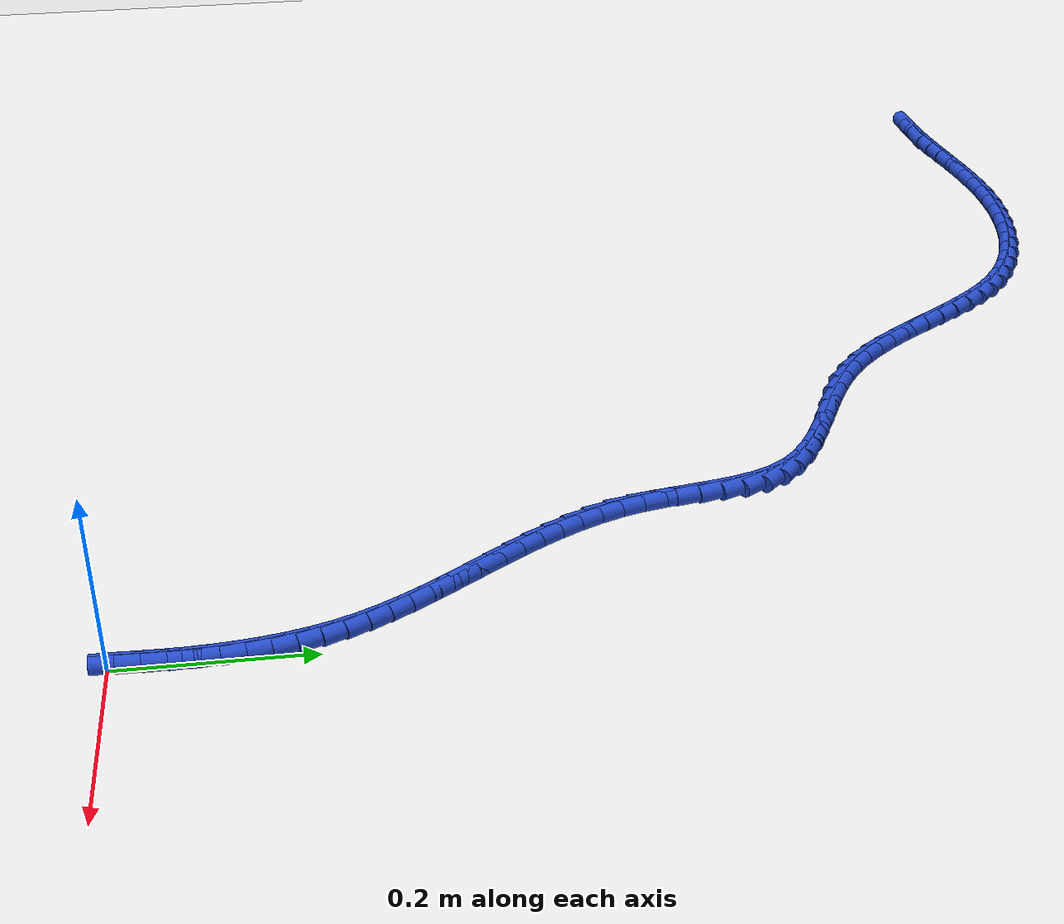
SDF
<sdf version="1.6">
 <world name="default">
  <model name="ground_plane">
   <static>1</static>
   <link name="link">
    <collision name="collision">
     <geometry><plane><normal>0 0 1</normal><size>100 100</size></plane></geometry>
     <surface><friction><ode><mu>100</mu><mu2>50</mu2></ode></friction></surface>
    </collision>
    <visual name="visual">
     <cast_shadows>0</cast_shadows>
     <geometry><plane><normal>0 0 1</normal><size>100 100</size></plane></geometry>
     <material>
      <script><uri>file://media/materials/scripts/gazebo.material</uri><name>Gazebo/WhiteGlow</name></script>
     </material>
    </visual>
   </link>
  </model>
  <model name="line">
   <link name="link_1">
    <pose>0.0007970484209607412 0.024100980883869888 0.01 0 1.57 1.5590506642254127</pose>
    <collision name="collision">
     <geometry><cylinder><radius>0.01</radius><length>0.08</length></cylinder></geometry>
    </collision>
    <visual name="visual">
     <material>
      <script><name>Gazebo/Blue</name><uri>file://media/materials/scripts/gazebo.material</uri></script>
     </material>
     <geometry><cylinder><radius>0.01</radius><length>0.08</length></cylinder></geometry>
    </visual>
   </link>
   <link name="link_2">
    <pose>0.0010815445360322206 0.04832124348585979 0.01 0 1.57 -1.5562364600417415</pose>
    <collision name="collision">
     <geometry><cylinder><radius>0.01</radius><length>0.08</length></cylinder></geometry>
    </collision>
    <visual name="visual">
     <material>
      <script><name>Gazebo/Blue</name><uri>file://media/materials/scripts/gazebo.material</uri></script>
     </material>
     <geometry><cylinder><radius>0.01</radius><length>0.08</length></cylinder></geometry>
    </visual>
   </link>
   <link name="link_3">
    <pose>0.0007285085105565183 0.07256673174743694 0.01 0 1.57 -1.5246875000757079</pose>
    <collision name="collision">
     <geometry><cylinder><radius>0.01</radius><length>0.08</length></cylinder></geometry>
    </collision>
    <visual name="visual">
     <material>
      <script><name>Gazebo/Blue</name><uri>file://media/materials/scripts/gazebo.material</uri></script>
     </material>
     <geometry><cylinder><radius>0.01</radius><length>0.08</length></cylinder></geometry>
    </visual>
   </link>
   <link name="link_4">
    <pose>-0.00038703949012428886 0.0967433896100686 0.01 0 1.57 -1.4875768426590987</pose>
    <collision name="collision">
     <geometry><cylinder><radius>0.01</radius><length>0.08</length></cylinder></geometry>
    </collision>
    <visual name="visual">
     <material>
      <script><name>Gazebo/Blue</name><uri>file://media/materials/scripts/gazebo.material</uri></script>
     </material>
     <geometry><cylinder><radius>0.01</radius><length>0.08</length></cylinder></geometry>
    </visual>
   </link>
   <link name="link_5">
    <pose>-0.0023900793006681265 0.12075716101522205 0.01 0 1.57 -1.4445391100634075</pose>
    <collision name="collision">
     <geometry><cylinder><radius>0.01</radius><length>0.08</length></cylinder></geometry>
    </collision>
    <visual name="visual">
     <material>
      <script><name>Gazebo/Blue</name><uri>file://media/materials/scripts/gazebo.material</uri></script>
     </material>
     <geometry><cylinder><radius>0.01</radius><length>0.08</length></cylinder></geometry>
    </visual>
   </link>
   <link name="link_6">
    <pose>-0.005405590755732916 0.14451398990436462 0.01 0 1.57 -1.3951910916977617</pose>
    <collision name="collision">
     <geometry><cylinder><radius>0.01</radius><length>0.08</length></cylinder></geometry>
    </collision>
    <visual name="visual">
     <material>
      <script><name>Gazebo/Blue</name><uri>file://media/materials/scripts/gazebo.material</uri></script>
     </material>
     <geometry><cylinder><radius>0.01</radius><length>0.08</length></cylinder></geometry>
    </visual>
   </link>
   <link name="link_7">
    <pose>-0.009558553689976582 0.16791982021896348 0.01 0 1.57 -1.3391750716156336</pose>
    <collision name="collision">
     <geometry><cylinder><radius>0.01</radius><length>0.08</length></cylinder></geometry>
    </collision>
    <visual name="visual">
     <material>
      <script><name>Gazebo/Blue</name><uri>file://media/materials/scripts/gazebo.material</uri></script>
     </material>
     <geometry><cylinder><radius>0.01</radius><length>0.08</length></cylinder></geometry>
    </visual>
   </link>
   <link name="link_8">
    <pose>-0.014973947938057052 0.190880595900486 0.01 0 1.57 -1.276220242322087</pose>
    <collision name="collision">
     <geometry><cylinder><radius>0.01</radius><length>0.08</length></cylinder></geometry>
    </collision>
    <visual name="visual">
     <material>
      <script><name>Gazebo/Blue</name><uri>file://media/materials/scripts/gazebo.material</uri></script>
     </material>
     <geometry><cylinder><radius>0.01</radius><length>0.08</length></cylinder></geometry>
    </visual>
   </link>
   <link name="link_9">
    <pose>-0.02177675333463224 0.21330226089039936 0.01 0 1.57 -1.2068035065443747</pose>
    <collision name="collision">
     <geometry><cylinder><radius>0.01</radius><length>0.08</length></cylinder></geometry>
    </collision>
    <visual name="visual">
     <material>
      <script><name>Gazebo/Blue</name><uri>file://media/materials/scripts/gazebo.material</uri></script>
     </material>
     <geometry><cylinder><radius>0.01</radius><length>0.08</length></cylinder></geometry>
    </visual>
   </link>
   <link name="link_10">
    <pose>-0.030080076622343223 0.2350975762234323 0.01 0 1.57 -1.1405671205885406</pose>
    <collision name="collision">
     <geometry><cylinder><radius>0.01</radius><length>0.08</length></cylinder></geometry>
    </collision>
    <visual name="visual">
     <material>
      <script><name>Gazebo/Blue</name><uri>file://media/materials/scripts/gazebo.material</uri></script>
     </material>
     <geometry><cylinder><radius>0.01</radius><length>0.08</length></cylinder></geometry>
    </visual>
   </link>
   <link name="link_11">
    <pose>-0.039805034712374315 0.25628953644251956 0.01 0 1.57 -1.0856745129224168</pose>
    <collision name="collision">
     <geometry><cylinder><radius>0.01</radius><length>0.08</length></cylinder></geometry>
    </collision>
    <visual name="visual">
     <material>
      <script><name>Gazebo/Blue</name><uri>file://media/materials/scripts/gazebo.material</uri></script>
     </material>
     <geometry><cylinder><radius>0.01</radius><length>0.08</length></cylinder></geometry>
    </visual>
   </link>
   <link name="link_12">
    <pose>-0.050717258536227966 0.2769904104281333 0.01 0 1.57 -1.0425523027838146</pose>
    <collision name="collision">
     <geometry><cylinder><radius>0.01</radius><length>0.08</length></cylinder></geometry>
    </collision>
    <visual name="visual">
     <material>
      <script><name>Gazebo/Blue</name><uri>file://media/materials/scripts/gazebo.material</uri></script>
     </material>
     <geometry><cylinder><radius>0.01</radius><length>0.08</length></cylinder></geometry>
    </visual>
   </link>
   <link name="link_13">
    <pose>-0.06257790863728484 0.29731503379337926 0.01 0 1.57 -1.0110962908676804</pose>
    <collision name="collision">
     <geometry><cylinder><radius>0.01</radius><length>0.08</length></cylinder></geometry>
    </collision>
    <visual name="visual">
     <material>
      <script><name>Gazebo/Blue</name><uri>file://media/materials/scripts/gazebo.material</uri></script>
     </material>
     <geometry><cylinder><radius>0.01</radius><length>0.08</length></cylinder></geometry>
    </visual>
   </link>
   <link name="link_14">
    <pose>-0.07514814555892554 0.3173782421513631 0.01 0 1.57 -0.9910690757105136</pose>
    <collision name="collision">
     <geometry><cylinder><radius>0.01</radius><length>0.08</length></cylinder></geometry>
    </collision>
    <visual name="visual">
     <material>
      <script><name>Gazebo/Blue</name><uri>file://media/materials/scripts/gazebo.material</uri></script>
     </material>
     <geometry><cylinder><radius>0.01</radius><length>0.08</length></cylinder></geometry>
    </visual>
   </link>
   <link name="link_15">
    <pose>-0.08818912984453078 0.33729487111519063 0.01 0 1.57 -0.9822263687409355</pose>
    <collision name="collision">
     <geometry><cylinder><radius>0.01</radius><length>0.08</length></cylinder></geometry>
    </collision>
    <visual name="visual">
     <material>
      <script><name>Gazebo/Blue</name><uri>file://media/materials/scripts/gazebo.material</uri></script>
     </material>
     <geometry><cylinder><radius>0.01</radius><length>0.08</length></cylinder></geometry>
    </visual>
   </link>
   <link name="link_16">
    <pose>-0.1014620220374812 0.3571797562979676 0.01 0 1.57 -0.9843911157351981</pose>
    <collision name="collision">
     <geometry><cylinder><radius>0.01</radius><length>0.08</length></cylinder></geometry>
    </collision>
    <visual name="visual">
     <material>
      <script><name>Gazebo/Blue</name><uri>file://media/materials/scripts/gazebo.material</uri></script>
     </material>
     <geometry><cylinder><radius>0.01</radius><length>0.08</length></cylinder></geometry>
    </visual>
   </link>
   <link name="link_17">
    <pose>-0.11472798268115736 0.3771477333127995 0.01 0 1.57 -0.997482613853166</pose>
    <collision name="collision">
     <geometry><cylinder><radius>0.01</radius><length>0.08</length></cylinder></geometry>
    </collision>
    <visual name="visual">
     <material>
      <script><name>Gazebo/Blue</name><uri>file://media/materials/scripts/gazebo.material</uri></script>
     </material>
     <geometry><cylinder><radius>0.01</radius><length>0.08</length></cylinder></geometry>
    </visual>
   </link>
   <link name="link_18">
    <pose>-0.12774817231893995 0.3973136377727922 0.01 0 1.57 -1.0215063973636789</pose>
    <collision name="collision">
     <geometry><cylinder><radius>0.01</radius><length>0.08</length></cylinder></geometry>
    </collision>
    <visual name="visual">
     <material>
      <script><name>Gazebo/Blue</name><uri>file://media/materials/scripts/gazebo.material</uri></script>
     </material>
     <geometry><cylinder><radius>0.01</radius><length>0.08</length></cylinder></geometry>
    </visual>
   </link>
   <link name="link_19">
    <pose>-0.1402837514942097 0.41779230529105144 0.01 0 1.57 -1.056506563675862</pose>
    <collision name="collision">
     <geometry><cylinder><radius>0.01</radius><length>0.08</length></cylinder></geometry>
    </collision>
    <visual name="visual">
     <material>
      <script><name>Gazebo/Blue</name><uri>file://media/materials/scripts/gazebo.material</uri></script>
     </material>
     <geometry><cylinder><radius>0.01</radius><length>0.08</length></cylinder></geometry>
    </visual>
   </link>
   <link name="link_20">
    <pose>-0.15209588075034713 0.43869857148068286 0.01 0 1.57 -1.102479129949488</pose>
    <collision name="collision">
     <geometry><cylinder><radius>0.01</radius><length>0.08</length></cylinder></geometry>
    </collision>
    <visual name="visual">
     <material>
      <script><name>Gazebo/Blue</name><uri>file://media/materials/scripts/gazebo.material</uri></script>
     </material>
     <geometry><cylinder><radius>0.01</radius><length>0.08</length></cylinder></geometry>
    </visual>
   </link>
   <link name="link_21">
    <pose>-0.16294572063073295 0.4601472719547923 0.01 0 1.57 -1.1592462468740627</pose>
    <collision name="collision">
     <geometry><cylinder><radius>0.01</radius><length>0.08</length></cylinder></geometry>
    </collision>
    <visual name="visual">
     <material>
      <script><name>Gazebo/Blue</name><uri>file://media/materials/scripts/gazebo.material</uri></script>
     </material>
     <geometry><cylinder><radius>0.01</radius><length>0.08</length></cylinder></geometry>
    </visual>
   </link>
   <link name="link_22">
    <pose>-0.1725944316787478 0.48225324232648525 0.01 0 1.57 -1.2263000235672428</pose>
    <collision name="collision">
     <geometry><cylinder><radius>0.01</radius><length>0.08</length></cylinder></geometry>
    </collision>
    <visual name="visual">
     <material>
      <script><name>Gazebo/Blue</name><uri>file://media/materials/scripts/gazebo.material</uri></script>
     </material>
     <geometry><cylinder><radius>0.01</radius><length>0.08</length></cylinder></geometry>
    </visual>
   </link>
   <link name="link_23">
    <pose>-0.1808031744377723 0.5051313182088677 0.01 0 1.57 -1.3025626650573683</pose>
    <collision name="collision">
     <geometry><cylinder><radius>0.01</radius><length>0.08</length></cylinder></geometry>
    </collision>
    <visual name="visual">
     <material>
      <script><name>Gazebo/Blue</name><uri>file://media/materials/scripts/gazebo.material</uri></script>
     </material>
     <geometry><cylinder><radius>0.01</radius><length>0.08</length></cylinder></geometry>
    </visual>
   </link>
   <link name="link_24">
    <pose>-0.18733486048429673 0.5288952237328173 0.01 0 1.57 -1.3732433527757366</pose>
    <collision name="collision">
     <geometry><cylinder><radius>0.01</radius><length>0.08</length></cylinder></geometry>
    </collision>
    <visual name="visual">
     <material>
      <script><name>Gazebo/Blue</name><uri>file://media/materials/scripts/gazebo.material</uri></script>
     </material>
     <geometry><cylinder><radius>0.01</radius><length>0.08</length></cylinder></geometry>
    </visual>
   </link>
   <link name="link_25">
    <pose>-0.19225336715575275 0.5534676426127636 0.01 0 1.57 -1.4111423235205427</pose>
    <collision name="collision">
     <geometry><cylinder><radius>0.01</radius><length>0.08</length></cylinder></geometry>
    </collision>
    <visual name="visual">
     <material>
      <script><name>Gazebo/Blue</name><uri>file://media/materials/scripts/gazebo.material</uri></script>
     </material>
     <geometry><cylinder><radius>0.01</radius><length>0.08</length></cylinder></geometry>
    </visual>
   </link>
   <link name="link_26">
    <pose>-0.19626246417296553 0.5783650817707223 0.01 0 1.57 -1.414692538580771</pose>
    <collision name="collision">
     <geometry><cylinder><radius>0.01</radius><length>0.08</length></cylinder></geometry>
    </collision>
    <visual name="visual">
     <material>
      <script><name>Gazebo/Blue</name><uri>file://media/materials/scripts/gazebo.material</uri></script>
     </material>
     <geometry><cylinder><radius>0.01</radius><length>0.08</length></cylinder></geometry>
    </visual>
   </link>
   <link name="link_27">
    <pose>-0.20014780780355898 0.6030520699902222 0.01 0 1.57 -1.383097111100767</pose>
    <collision name="collision">
     <geometry><cylinder><radius>0.01</radius><length>0.08</length></cylinder></geometry>
    </collision>
    <visual name="visual">
     <material>
      <script><name>Gazebo/Blue</name><uri>file://media/materials/scripts/gazebo.material</uri></script>
     </material>
     <geometry><cylinder><radius>0.01</radius><length>0.08</length></cylinder></geometry>
    </visual>
   </link>
   <link name="link_28">
    <pose>-0.20469505431515722 0.6269931360547925 0.01 0 1.57 -1.3121633099585046</pose>
    <collision name="collision">
     <geometry><cylinder><radius>0.01</radius><length>0.08</length></cylinder></geometry>
    </collision>
    <visual name="visual">
     <material>
      <script><name>Gazebo/Blue</name><uri>file://media/materials/scripts/gazebo.material</uri></script>
     </material>
     <geometry><cylinder><radius>0.01</radius><length>0.08</length></cylinder></geometry>
    </visual>
   </link>
   <link name="link_29">
    <pose>-0.210689859975384 0.6496528087479614 0.01 0 1.57 -1.1948105988775166</pose>
    <collision name="collision">
     <geometry><cylinder><radius>0.01</radius><length>0.08</length></cylinder></geometry>
    </collision>
    <visual name="visual">
     <material>
      <script><name>Gazebo/Blue</name><uri>file://media/materials/scripts/gazebo.material</uri></script>
     </material>
     <geometry><cylinder><radius>0.01</radius><length>0.08</length></cylinder></geometry>
    </visual>
   </link>
   <link name="link_30">
    <pose>-0.21891788105186344 0.6704956168532586 0.01 0 1.57 -1.0243563953136636</pose>
    <collision name="collision">
     <geometry><cylinder><radius>0.01</radius><length>0.08</length></cylinder></geometry>
    </collision>
    <visual name="visual">
     <material>
      <script><name>Gazebo/Blue</name><uri>file://media/materials/scripts/gazebo.material</uri></script>
     </material>
     <geometry><cylinder><radius>0.01</radius><length>0.08</length></cylinder></geometry>
    </visual>
   </link>
   <link name="link_31">
    <pose>-0.23016432078421822 0.6889864337784675 0.01 0 1.57 -0.823109774391957</pose>
    <collision name="collision">
     <geometry><cylinder><radius>0.01</radius><length>0.08</length></cylinder></geometry>
    </collision>
    <visual name="visual">
     <material>
      <script><name>Gazebo/Blue</name><uri>file://media/materials/scripts/gazebo.material</uri></script>
     </material>
     <geometry><cylinder><radius>0.01</radius><length>0.08</length></cylinder></geometry>
    </visual>
   </link>
   <link name="link_32">
    <pose>-0.24487370348641282 0.7048492917926089 0.01 0 1.57 -0.658723296787749</pose>
    <collision name="collision">
     <geometry><cylinder><radius>0.01</radius><length>0.08</length></cylinder></geometry>
    </collision>
    <visual name="visual">
     <material>
      <script><name>Gazebo/Blue</name><uri>file://media/materials/scripts/gazebo.material</uri></script>
     </material>
     <geometry><cylinder><radius>0.01</radius><length>0.08</length></cylinder></geometry>
    </visual>
   </link>
   <link name="link_33">
    <pose>-0.26254471375626814 0.7185277356595703 0.01 0 1.57 -0.5433720480111619</pose>
    <collision name="collision">
     <geometry><cylinder><radius>0.01</radius><length>0.08</length></cylinder></geometry>
    </collision>
    <visual name="visual">
     <material>
      <script><name>Gazebo/Blue</name><uri>file://media/materials/scripts/gazebo.material</uri></script>
     </material>
     <geometry><cylinder><radius>0.01</radius><length>0.08</length></cylinder></geometry>
    </visual>
   </link>
   <link name="link_34">
    <pose>-0.2825132212821765 0.7305891655488476 0.01 0 1.57 -0.4714267252770129</pose>
    <collision name="collision">
     <geometry><cylinder><radius>0.01</radius><length>0.08</length></cylinder></geometry>
    </collision>
    <visual name="visual">
     <material>
      <script><name>Gazebo/Blue</name><uri>file://media/materials/scripts/gazebo.material</uri></script>
     </material>
     <geometry><cylinder><radius>0.01</radius><length>0.08</length></cylinder></geometry>
    </visual>
   </link>
   <link name="link_35">
    <pose>-0.3041150957525304 0.7416009816299373 0.01 0 1.57 -0.43649680693843845</pose>
    <collision name="collision">
     <geometry><cylinder><radius>0.01</radius><length>0.08</length></cylinder></geometry>
    </collision>
    <visual name="visual">
     <material>
      <script><name>Gazebo/Blue</name><uri>file://media/materials/scripts/gazebo.material</uri></script>
     </material>
     <geometry><cylinder><radius>0.01</radius><length>0.08</length></cylinder></geometry>
    </visual>
   </link>
   <link name="link_36">
    <pose>-0.3266862068557221 0.7521305840723356 0.01 0 1.57 -0.4344432025812066</pose>
    <collision name="collision">
     <geometry><cylinder><radius>0.01</radius><length>0.08</length></cylinder></geometry>
    </collision>
    <visual name="visual">
     <material>
      <script><name>Gazebo/Blue</name><uri>file://media/materials/scripts/gazebo.material</uri></script>
     </material>
     <geometry><cylinder><radius>0.01</radius><length>0.08</length></cylinder></geometry>
    </visual>
   </link>
   <link name="link_37">
    <pose>-0.3495624242801442 0.7627453730455389 0.01 0 1.57 -0.46395946269068633</pose>
    <collision name="collision">
     <geometry><cylinder><radius>0.01</radius><length>0.08</length></cylinder></geometry>
    </collision>
    <visual name="visual">
     <material>
      <script><name>Gazebo/Blue</name><uri>file://media/materials/scripts/gazebo.material</uri></script>
     </material>
     <geometry><cylinder><radius>0.01</radius><length>0.08</length></cylinder></geometry>
    </visual>
   </link>
   <link name="link_38">
    <pose>-0.372079617714189 0.7740127487190436 0.01 0 1.57 -0.5263082969305263</pose>
    <collision name="collision">
     <geometry><cylinder><radius>0.01</radius><length>0.08</length></cylinder></geometry>
    </collision>
    <visual name="visual">
     <material>
      <script><name>Gazebo/Blue</name><uri>file://media/materials/scripts/gazebo.material</uri></script>
     </material>
     <geometry><cylinder><radius>0.01</radius><length>0.08</length></cylinder></geometry>
    </visual>
   </link>
   <link name="link_39">
    <pose>-0.39357365684624906 0.7865001112623456 0.01 0 1.57 -0.6234887158550748</pose>
    <collision name="collision">
     <geometry><cylinder><radius>0.01</radius><length>0.08</length></cylinder></geometry>
    </collision>
    <visual name="visual">
     <material>
      <script><name>Gazebo/Blue</name><uri>file://media/materials/scripts/gazebo.material</uri></script>
     </material>
     <geometry><cylinder><radius>0.01</radius><length>0.08</length></cylinder></geometry>
    </visual>
   </link>
   <link name="link_40">
    <pose>-0.41339848496765896 0.8007579090677729 0.01 0 1.57 -0.732207605851496</pose>
    <collision name="collision">
     <geometry><cylinder><radius>0.01</radius><length>0.08</length></cylinder></geometry>
    </collision>
    <visual name="visual">
     <material>
      <script><name>Gazebo/Blue</name><uri>file://media/materials/scripts/gazebo.material</uri></script>
     </material>
     <geometry><cylinder><radius>0.01</radius><length>0.08</length></cylinder></geometry>
    </visual>
   </link>
   <link name="link_41">
    <pose>-0.4313649842175776 0.8169080138043303 0.01 0 1.57 -0.8238655063089911</pose>
    <collision name="collision">
     <geometry><cylinder><radius>0.01</radius><length>0.08</length></cylinder></geometry>
    </collision>
    <visual name="visual">
     <material>
      <script><name>Gazebo/Blue</name><uri>file://media/materials/scripts/gazebo.material</uri></script>
     </material>
     <geometry><cylinder><radius>0.01</radius><length>0.08</length></cylinder></geometry>
    </visual>
   </link>
   <link name="link_42">
    <pose>-0.4477651372034923 0.8346210585052847 0.01 0 1.57 -0.8957785052821226</pose>
    <collision name="collision">
     <geometry><cylinder><radius>0.01</radius><length>0.08</length></cylinder></geometry>
    </collision>
    <visual name="visual">
     <material>
      <script><name>Gazebo/Blue</name><uri>file://media/materials/scripts/gazebo.material</uri></script>
     </material>
     <geometry><cylinder><radius>0.01</radius><length>0.08</length></cylinder></geometry>
    </visual>
   </link>
   <link name="link_43">
    <pose>-0.4629138364821737 0.8535461882716753 0.01 0 1.57 -0.9479072521702695</pose>
    <collision name="collision">
     <geometry><cylinder><radius>0.01</radius><length>0.08</length></cylinder></geometry>
    </collision>
    <visual name="visual">
     <material>
      <script><name>Gazebo/Blue</name><uri>file://media/materials/scripts/gazebo.material</uri></script>
     </material>
     <geometry><cylinder><radius>0.01</radius><length>0.08</length></cylinder></geometry>
    </visual>
   </link>
   <link name="link_44">
    <pose>-0.47712597461039236 0.8733325482045406 0.01 0 1.57 -0.9807733343745144</pose>
    <collision name="collision">
     <geometry><cylinder><radius>0.01</radius><length>0.08</length></cylinder></geometry>
    </collision>
    <visual name="visual">
     <material>
      <script><name>Gazebo/Blue</name><uri>file://media/materials/scripts/gazebo.material</uri></script>
     </material>
     <geometry><cylinder><radius>0.01</radius><length>0.08</length></cylinder></geometry>
    </visual>
   </link>
   <link name="link_45">
    <pose>-0.4907164441449183 0.8936292834049192 0.01 0 1.57 -0.9948636064075415</pose>
    <collision name="collision">
     <geometry><cylinder><radius>0.01</radius><length>0.08</length></cylinder></geometry>
    </collision>
    <visual name="visual">
     <material>
      <script><name>Gazebo/Blue</name><uri>file://media/materials/scripts/gazebo.material</uri></script>
     </material>
     <geometry><cylinder><radius>0.01</radius><length>0.08</length></cylinder></geometry>
    </visual>
   </link>
   <link name="link_46">
    <pose>-0.504000137642522 0.9140855389738499 0.01 0 1.57 -0.9902829873642007</pose>
    <collision name="collision">
     <geometry><cylinder><radius>0.01</radius><length>0.08</length></cylinder></geometry>
    </collision>
    <visual name="visual">
     <material>
      <script><name>Gazebo/Blue</name><uri>file://media/materials/scripts/gazebo.material</uri></script>
     </material>
     <geometry><cylinder><radius>0.01</radius><length>0.08</length></cylinder></geometry>
    </visual>
   </link>
   <link name="link_47">
    <pose>-0.517291947659974 0.9343504600123713 0.01 0 1.57 -0.9666026711791768</pose>
    <collision name="collision">
     <geometry><cylinder><radius>0.01</radius><length>0.08</length></cylinder></geometry>
    </collision>
    <visual name="visual">
     <material>
      <script><name>Gazebo/Blue</name><uri>file://media/materials/scripts/gazebo.material</uri></script>
     </material>
     <geometry><cylinder><radius>0.01</radius><length>0.08</length></cylinder></geometry>
    </visual>
   </link>
   <link name="link_48">
    <pose>-0.5309067667540446 0.9540731916215222 0.01 0 1.57 -0.9228759148160085</pose>
    <collision name="collision">
     <geometry><cylinder><radius>0.01</radius><length>0.08</length></cylinder></geometry>
    </collision>
    <visual name="visual">
     <material>
      <script><name>Gazebo/Blue</name><uri>file://media/materials/scripts/gazebo.material</uri></script>
     </material>
     <geometry><cylinder><radius>0.01</radius><length>0.08</length></cylinder></geometry>
    </visual>
   </link>
   <link name="link_49">
    <pose>-0.5451594874815038 0.9729028789023408 0.01 0 1.57 -0.8578596229150195</pose>
    <collision name="collision">
     <geometry><cylinder><radius>0.01</radius><length>0.08</length></cylinder></geometry>
    </collision>
    <visual name="visual">
     <material>
      <script><name>Gazebo/Blue</name><uri>file://media/materials/scripts/gazebo.material</uri></script>
     </material>
     <geometry><cylinder><radius>0.01</radius><length>0.08</length></cylinder></geometry>
    </visual>
   </link>
   <link name="link_50">
    <pose>-0.5603650023991221 0.9904886669558661 0.01 0 1.57 -0.7705469808768325</pose>
    <collision name="collision">
     <geometry><cylinder><radius>0.01</radius><length>0.08</length></cylinder></geometry>
    </collision>
    <visual name="visual">
     <material>
      <script><name>Gazebo/Blue</name><uri>file://media/materials/scripts/gazebo.material</uri></script>
     </material>
     <geometry><cylinder><radius>0.01</radius><length>0.08</length></cylinder></geometry>
    </visual>
   </link>
   <link name="link_51">
    <pose>-0.57683820406367 1.0064797008831365 0.01 0 1.57 -0.6611400918502731</pose>
    <collision name="collision">
     <geometry><cylinder><radius>0.01</radius><length>0.08</length></cylinder></geometry>
    </collision>
    <visual name="visual">
     <material>
      <script><name>Gazebo/Blue</name><uri>file://media/materials/scripts/gazebo.material</uri></script>
     </material>
     <geometry><cylinder><radius>0.01</radius><length>0.08</length></cylinder></geometry>
    </visual>
   </link>
   <link name="link_52">
    <pose>-0.5948934781546033 1.0205255006504517 0.01 0 1.57 -0.5398579570727587</pose>
    <collision name="collision">
     <geometry><cylinder><radius>0.01</radius><length>0.08</length></cylinder></geometry>
    </collision>
    <visual name="visual">
     <material>
      <script><name>Gazebo/Blue</name><uri>file://media/materials/scripts/gazebo.material</uri></script>
     </material>
     <geometry><cylinder><radius>0.01</radius><length>0.08</length></cylinder></geometry>
    </visual>
   </link>
   <link name="link_53">
    <pose>-0.6146915484365888 1.0323892281490707 0.01 0 1.57 -0.4274421773303493</pose>
    <collision name="collision">
     <geometry><cylinder><radius>0.01</radius><length>0.08</length></cylinder></geometry>
    </collision>
    <visual name="visual">
     <material>
      <script><name>Gazebo/Blue</name><uri>file://media/materials/scripts/gazebo.material</uri></script>
     </material>
     <geometry><cylinder><radius>0.01</radius><length>0.08</length></cylinder></geometry>
    </visual>
   </link>
   <link name="link_54">
    <pose>-0.6360242259432919 1.0421068776955869 0.01 0 1.57 -0.32623134168544327</pose>
    <collision name="collision">
     <geometry><cylinder><radius>0.01</radius><length>0.08</length></cylinder></geometry>
    </collision>
    <visual name="visual">
     <material>
      <script><name>Gazebo/Blue</name><uri>file://media/materials/scripts/gazebo.material</uri></script>
     </material>
     <geometry><cylinder><radius>0.01</radius><length>0.08</length></cylinder></geometry>
    </visual>
   </link>
   <link name="link_55">
    <pose>-0.6586290972975799 1.049754545712776 0.01 0 1.57 -0.23499501403604114</pose>
    <collision name="collision">
     <geometry><cylinder><radius>0.01</radius><length>0.08</length></cylinder></geometry>
    </collision>
    <visual name="visual">
     <material>
      <script><name>Gazebo/Blue</name><uri>file://media/materials/scripts/gazebo.material</uri></script>
     </material>
     <geometry><cylinder><radius>0.01</radius><length>0.08</length></cylinder></geometry>
    </visual>
   </link>
   <link name="link_56">
    <pose>-0.682243749122319 1.0554083286234128 0.01 0 1.57 -0.15216776344641975</pose>
    <collision name="collision">
     <geometry><cylinder><radius>0.01</radius><length>0.08</length></cylinder></geometry>
    </collision>
    <visual name="visual">
     <material>
      <script><name>Gazebo/Blue</name><uri>file://media/materials/scripts/gazebo.material</uri></script>
     </material>
     <geometry><cylinder><radius>0.01</radius><length>0.08</length></cylinder></geometry>
    </visual>
   </link>
   <link name="link_57">
    <pose>-0.7066057680403758 1.0591443228502733 0.01 0 1.57 -0.07609154753678987</pose>
    <collision name="collision">
     <geometry><cylinder><radius>0.01</radius><length>0.08</length></cylinder></geometry>
    </collision>
    <visual name="visual">
     <material>
      <script><name>Gazebo/Blue</name><uri>file://media/materials/scripts/gazebo.material</uri></script>
     </material>
     <geometry><cylinder><radius>0.01</radius><length>0.08</length></cylinder></geometry>
    </visual>
   </link>
   <link name="link_58">
    <pose>-0.7314527406746172 1.061038624816132 0.01 0 1.57 -0.005133924898762644</pose>
    <collision name="collision">
     <geometry><cylinder><radius>0.01</radius><length>0.08</length></cylinder></geometry>
    </collision>
    <visual name="visual">
     <material>
      <script><name>Gazebo/Blue</name><uri>file://media/materials/scripts/gazebo.material</uri></script>
     </material>
     <geometry><cylinder><radius>0.01</radius><length>0.08</length></cylinder></geometry>
    </visual>
   </link>
   <link name="link_59">
    <pose>-0.7565222536479099 1.0611673309437646 0.01 0 1.57 0.062277162315601965</pose>
    <collision name="collision">
     <geometry><cylinder><radius>0.01</radius><length>0.08</length></cylinder></geometry>
    </collision>
    <visual name="visual">
     <material>
      <script><name>Gazebo/Blue</name><uri>file://media/materials/scripts/gazebo.material</uri></script>
     </material>
     <geometry><cylinder><radius>0.01</radius><length>0.08</length></cylinder></geometry>
    </visual>
   </link>
   <link name="link_60">
    <pose>-0.7815518935831205 1.0596065376559465 0.01 0 1.57 0.12764127700708167</pose>
    <collision name="collision">
     <geometry><cylinder><radius>0.01</radius><length>0.08</length></cylinder></geometry>
    </collision>
    <visual name="visual">
     <material>
      <script><name>Gazebo/Blue</name><uri>file://media/materials/scripts/gazebo.material</uri></script>
     </material>
     <geometry><cylinder><radius>0.01</radius><length>0.08</length></cylinder></geometry>
    </visual>
   </link>
   <link name="link_61">
    <pose>-0.806279998149785 1.0564329570912971 0.01 0 1.57 0.18837953735558405</pose>
    <collision name="collision">
     <geometry><cylinder><radius>0.01</radius><length>0.08</length></cylinder></geometry>
    </collision>
    <visual name="visual">
     <material>
      <script><name>Gazebo/Blue</name><uri>file://media/materials/scripts/gazebo.material</uri></script>
     </material>
     <geometry><cylinder><radius>0.01</radius><length>0.08</length></cylinder></geometry>
    </visual>
   </link>
   <link name="link_62">
    <pose>-0.830546700025307 1.051806753991003 0.01 0 1.57 0.2366429016731915</pose>
    <collision name="collision">
     <geometry><cylinder><radius>0.01</radius><length>0.08</length></cylinder></geometry>
    </collision>
    <visual name="visual">
     <material>
      <script><name>Gazebo/Blue</name><uri>file://media/materials/scripts/gazebo.material</uri></script>
     </material>
     <geometry><cylinder><radius>0.01</radius><length>0.08</length></cylinder></geometry>
    </visual>
   </link>
   <link name="link_63">
    <pose>-0.8543959957744661 1.046055222824195 0.01 0 1.57 0.271018231518018</pose>
    <collision name="collision">
     <geometry><cylinder><radius>0.01</radius><length>0.08</length></cylinder></geometry>
    </collision>
    <visual name="visual">
     <material>
      <script><name>Gazebo/Blue</name><uri>file://media/materials/scripts/gazebo.material</uri></script>
     </material>
     <geometry><cylinder><radius>0.01</radius><length>0.08</length></cylinder></geometry>
    </visual>
   </link>
   <link name="link_64">
    <pose>-0.8778961882794851 1.0395255846309814 0.01 0 1.57 0.29124762909165003</pose>
    <collision name="collision">
     <geometry><cylinder><radius>0.01</radius><length>0.08</length></cylinder></geometry>
    </collision>
    <visual name="visual">
     <material>
      <script><name>Gazebo/Blue</name><uri>file://media/materials/scripts/gazebo.material</uri></script>
     </material>
     <geometry><cylinder><radius>0.01</radius><length>0.08</length></cylinder></geometry>
    </visual>
   </link>
   <link name="link_65">
    <pose>-0.9011155804225881 1.0325650604514716 0.01 0 1.57 0.29711437225515364</pose>
    <collision name="collision">
     <geometry><cylinder><radius>0.01</radius><length>0.08</length></cylinder></geometry>
    </collision>
    <visual name="visual">
     <material>
      <script><name>Gazebo/Blue</name><uri>file://media/materials/scripts/gazebo.material</uri></script>
     </material>
     <geometry><cylinder><radius>0.01</radius><length>0.08</length></cylinder></geometry>
    </visual>
   </link>
   <link name="link_66">
    <pose>-0.9241224750859977 1.0255208713257742 0.01 0 1.57 0.2883167745336955</pose>
    <collision name="collision">
     <geometry><cylinder><radius>0.01</radius><length>0.08</length></cylinder></geometry>
    </collision>
    <visual name="visual">
     <material>
      <script><name>Gazebo/Blue</name><uri>file://media/materials/scripts/gazebo.material</uri></script>
     </material>
     <geometry><cylinder><radius>0.01</radius><length>0.08</length></cylinder></geometry>
    </visual>
   </link>
   <link name="link_67">
    <pose>-0.9469851751519373 1.0187402382939978 0.01 0 1.57 0.2644241346123407</pose>
    <collision name="collision">
     <geometry><cylinder><radius>0.01</radius><length>0.08</length></cylinder></geometry>
    </collision>
    <visual name="visual">
     <material>
      <script><name>Gazebo/Blue</name><uri>file://media/materials/scripts/gazebo.material</uri></script>
     </material>
     <geometry><cylinder><radius>0.01</radius><length>0.08</length></cylinder></geometry>
    </visual>
   </link>
   <link name="link_68">
    <pose>-0.9697719835026298 1.012570382396251 0.01 0 1.57 0.22492722466521078</pose>
    <collision name="collision">
     <geometry><cylinder><radius>0.01</radius><length>0.08</length></cylinder></geometry>
    </collision>
    <visual name="visual">
     <material>
      <script><name>Gazebo/Blue</name><uri>file://media/materials/scripts/gazebo.material</uri></script>
     </material>
     <geometry><cylinder><radius>0.01</radius><length>0.08</length></cylinder></geometry>
    </visual>
   </link>
   <link name="link_69">
    <pose>-0.9925512030202986 1.0073585246726433 0.01 0 1.57 0.1694048666344301</pose>
    <collision name="collision">
     <geometry><cylinder><radius>0.01</radius><length>0.08</length></cylinder></geometry>
    </collision>
    <visual name="visual">
     <material>
      <script><name>Gazebo/Blue</name><uri>file://media/materials/scripts/gazebo.material</uri></script>
     </material>
     <geometry><cylinder><radius>0.01</radius><length>0.08</length></cylinder></geometry>
    </visual>
   </link>
   <link name="link_281">
    <pose>0.0008159034628196055 0.024123629861289006 0.01 0 1.57 1.5537142388800236</pose>
    <collision name="collision">
     <geometry><cylinder><radius>0.01</radius><length>0.08</length></cylinder></geometry>
    </collision>
    <visual name="visual">
     <material>
      <script><name>Gazebo/Blue</name><uri>file://media/materials/scripts/gazebo.material</uri></script>
     </material>
     <geometry><cylinder><radius>0.01</radius><length>0.08</length></cylinder></geometry>
    </visual>
   </link>
   <link name="link_282">
    <pose>0.001232384870903181 0.048502435305213434 0.01 0 1.57 1.5453930711578243</pose>
    <collision name="collision">
     <geometry><cylinder><radius>0.01</radius><length>0.08</length></cylinder></geometry>
    </collision>
    <visual name="visual">
     <material>
      <script><name>Gazebo/Blue</name><uri>file://media/materials/scripts/gazebo.material</uri></script>
     </material>
     <geometry><cylinder><radius>0.01</radius><length>0.08</length></cylinder></geometry>
    </visual>
   </link>
  </model>
 </world>
</sdf>
